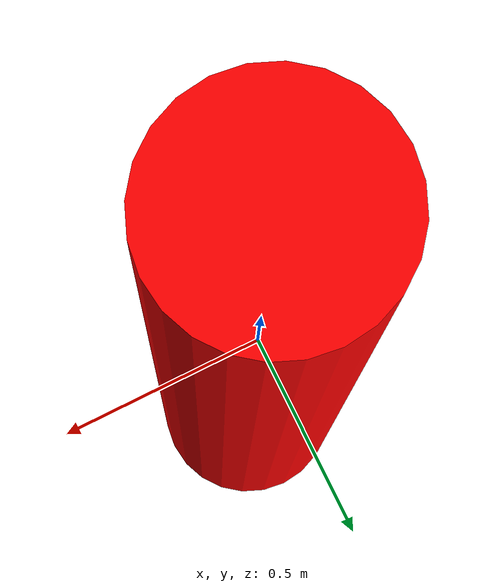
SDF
<?xml version="1.0" ?>
<sdf version="1.6">
  <model name="spar_buoy">
    <plugin
        filename="gz-waves1-hydrodynamics-system"
        name="gz::sim::systems::Hydrodynamics">
    </plugin>
    <link name="base_link">
      <visual name="visual">
        <geometry>
          <cylinder>
            <length>4.0</length>
            <radius>0.25</radius>
          </cylinder>
        </geometry>
        <material>
          <ambient>1 0 0 1</ambient>
          <diffuse>1 0 0 1</diffuse>
          <specular>0.8 0.8 0.8 1</specular>
        </material>
      </visual>
      <collision name="collision">
        <geometry>
          <cylinder>
            <length>4.0</length>
            <radius>0.25</radius>
          </cylinder>
        </geometry>
      </collision>
      <inertial>
        <pose>0 0 -1.5 0 0 0</pose>
        <mass>589.0</mass>
        <inertia>
          <ixx>58.29</ixx>
          <ixy>0.0</ixy>
          <ixz>0.0</ixz>
          <iyy>58.29</iyy>
          <iyz>0.0</iyz>
          <izz>18.41</izz>
        </inertia>
      </inertial>
    </link>
  </model>
</sdf>
